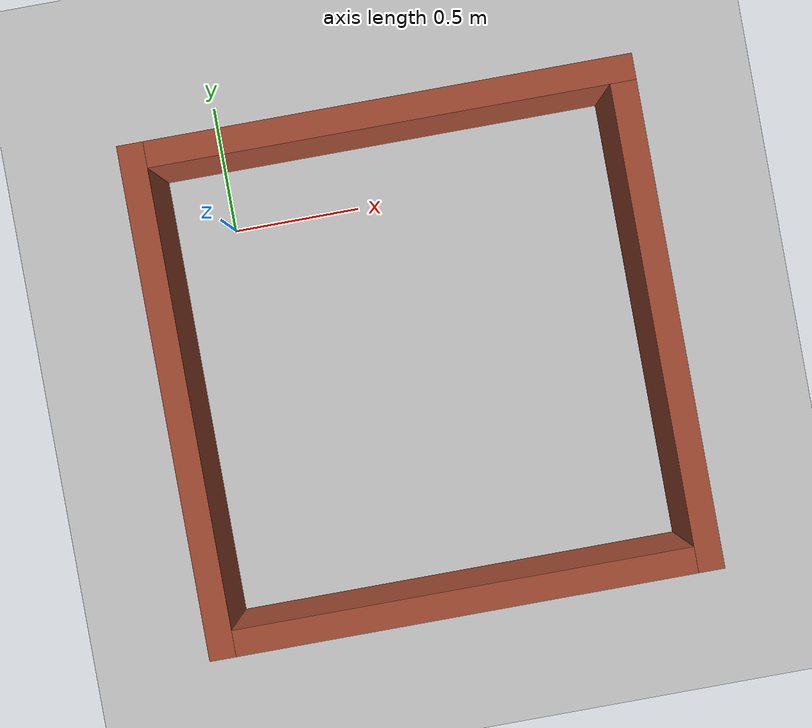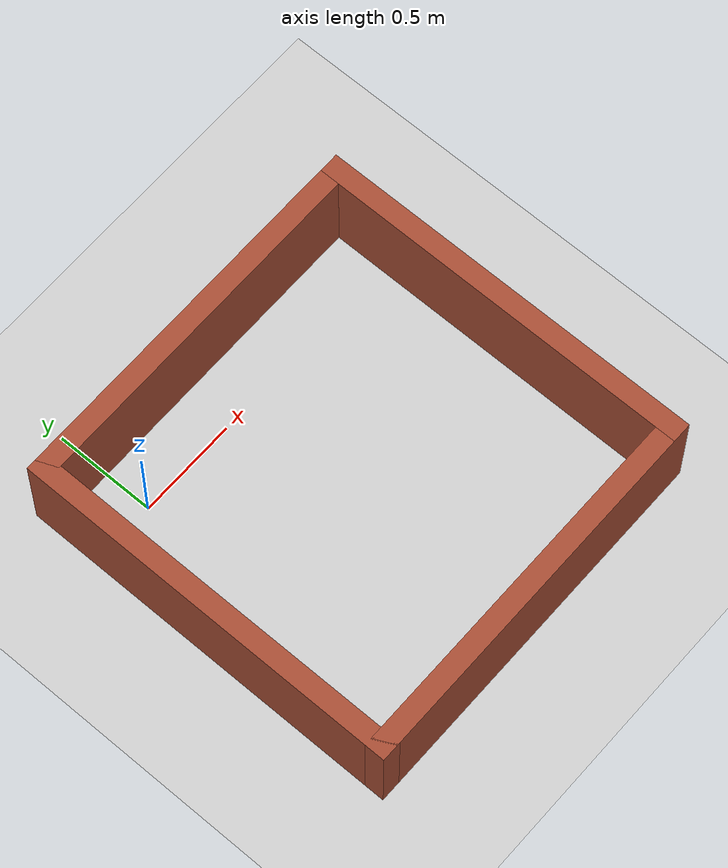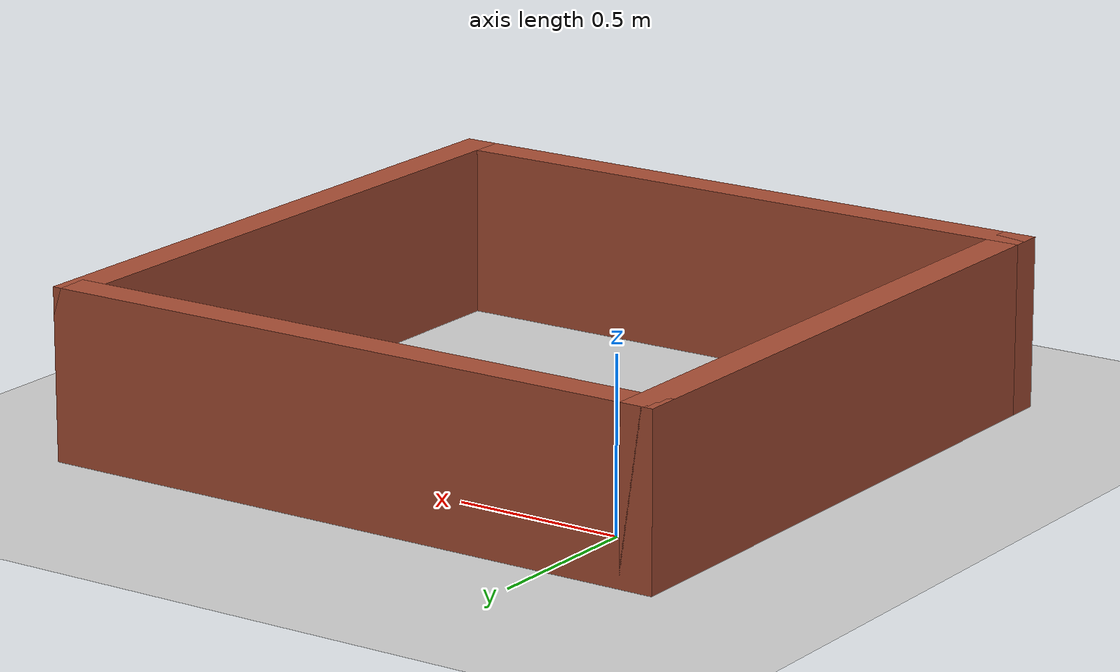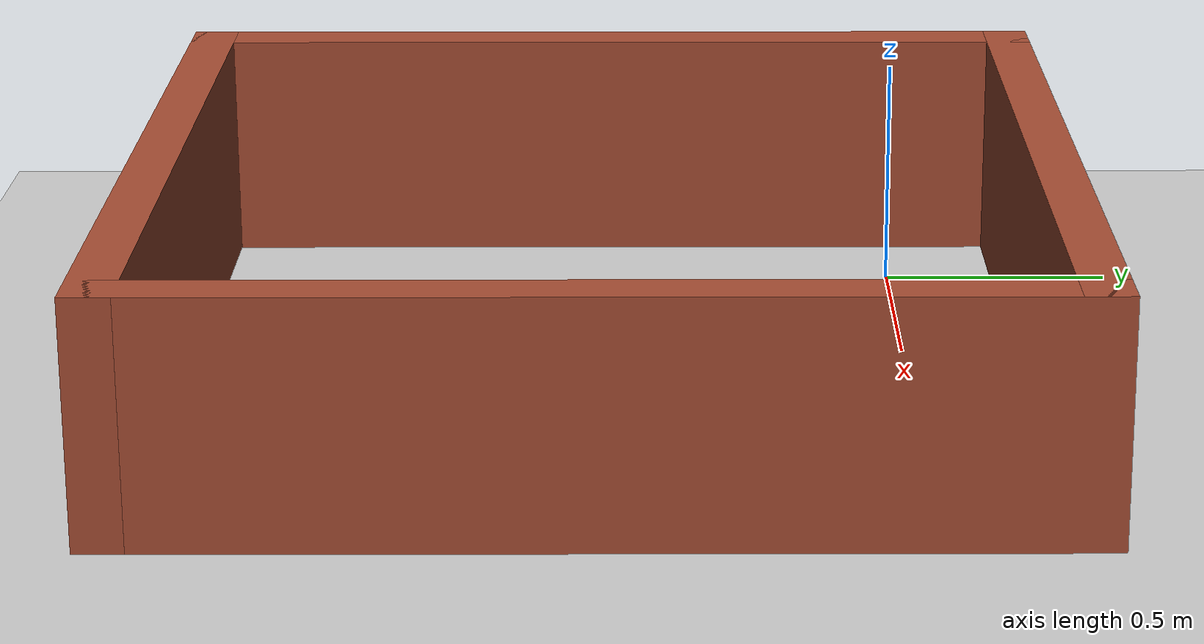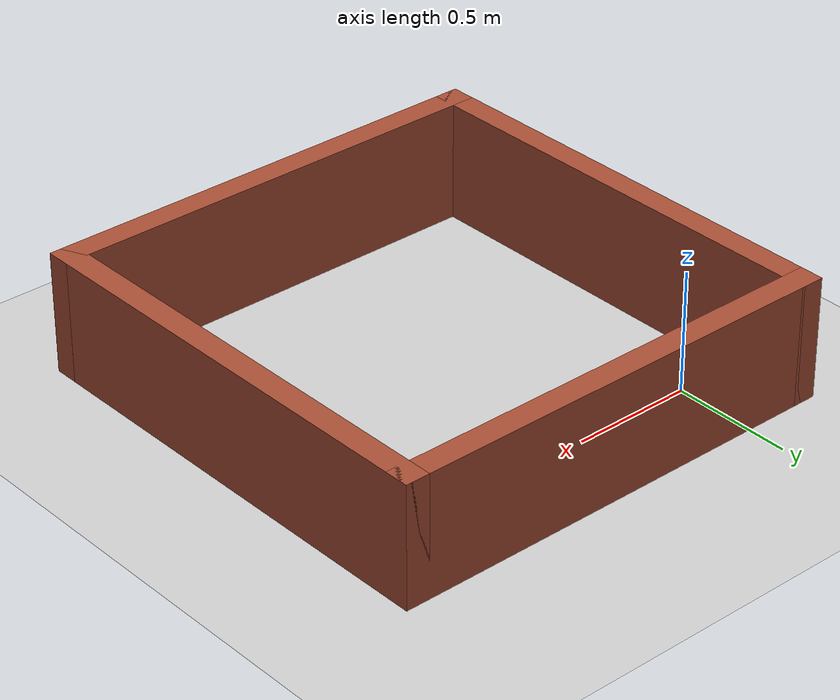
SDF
<sdf version="1.7">
 <world name="default">
  <model name="ground_plane">
   <static>1</static>
   <link name="link">
    <collision name="collision">
     <geometry><plane><normal>0 0 1</normal><size>100 100</size></plane></geometry>
     <surface><friction><ode><mu>100</mu><mu2>50</mu2></ode></friction></surface>
    </collision>
    <visual name="visual">
     <cast_shadows>0</cast_shadows>
     <geometry><plane><normal>0 0 1</normal><size>100 100</size></plane></geometry>
     <material>
      <script><uri>file://media/materials/scripts/gazebo.material</uri><name>Gazebo/Grey</name></script>
     </material>
    </visual>
   </link>
  </model>
  <light name="sun" type="directional">
   <pose>0 0 10 0 -0 0</pose>
   <diffuse>0.8 0.8 0.8 1</diffuse>
   <specular>0.2 0.2 0.2 1</specular>
   <attenuation>
    <range>1000</range>
    <constant>0.9</constant>
    <linear>0.01</linear>
    <quadratic>0.001</quadratic>
   </attenuation>
   <direction>-0.5 0.1 -0.9</direction>
   <spot><inner_angle>0</inner_angle><outer_angle>0</outer_angle><falloff>0</falloff></spot>
  </light>
  <scene><shadows>0</shadows><ambient>0.4 0.4 0.4 1</ambient><background>0.7 0.7 0.7 1</background></scene>
  <physics type="ode">
   <real_time_update_rate>1000</real_time_update_rate>
   <max_step_size>0.001</max_step_size>
   <real_time_factor>1</real_time_factor>
   <ode>
    <solver>
     <type>quick</type>
     <iters>150</iters>
     <precon_iters>0</precon_iters>
     <sor>1.4</sor>
     <use_dynamic_moi_rescaling>1</use_dynamic_moi_rescaling>
    </solver>
    <constraints>
     <cfm>1e-05</cfm>
     <erp>0.2</erp>
     <contact_max_correcting_vel>2000</contact_max_correcting_vel>
     <contact_surface_layer>0.01</contact_surface_layer>
    </constraints>
   </ode>
  </physics>
  <gravity>0 0 -9.8</gravity>
  <magnetic_field>6e-06 2.3e-05 -4.2e-05</magnetic_field>
  <atmosphere type="adiabatic"/>
  <audio><device>default</device></audio>
  <spherical_coordinates>
   <surface_model>EARTH_WGS84</surface_model>
   <latitude_deg>0</latitude_deg>
   <longitude_deg>0</longitude_deg>
   <elevation>0</elevation>
   <heading_deg>0</heading_deg>
  </spherical_coordinates>
  <model name="world_1">
   <pose>0.640821 -0.099987 0 0 -0 0</pose>
   <link name="Wall_5">
    <collision name="Wall_5_Collision">
     <geometry><box><size>1.95 0.1 0.5</size></box></geometry>
     <pose>0 0 0.25 0 -0 0</pose>
    </collision>
    <visual name="Wall_5_Visual">
     <pose>0 0 0.25 0 -0 0</pose>
     <geometry><box><size>1.95 0.1 0.5</size></box></geometry>
     <material>
      <script><uri>file://media/materials/scripts/gazebo.material</uri><name>Gazebo/Bricks</name></script>
      <ambient>1 1 1 1</ambient>
     </material>
     <meta><layer>0</layer></meta>
    </visual>
    <pose>-0.925 -0.535 0 0 -0 1.5708</pose>
   </link>
   <link name="Wall_6">
    <collision name="Wall_6_Collision">
     <geometry><box><size>1.95 0.1 0.5</size></box></geometry>
     <pose>0 0 0.25 0 -0 0</pose>
    </collision>
    <visual name="Wall_6_Visual">
     <pose>0 0 0.25 0 -0 0</pose>
     <geometry><box><size>1.95 0.1 0.5</size></box></geometry>
     <material>
      <script><uri>file://media/materials/scripts/gazebo.material</uri><name>Gazebo/Bricks</name></script>
      <ambient>1 1 1 1</ambient>
     </material>
     <meta><layer>0</layer></meta>
    </visual>
    <pose>-0 0.39 0 0 -0 0</pose>
   </link>
   <link name="Wall_7">
    <collision name="Wall_7_Collision">
     <geometry><box><size>1.95 0.1 0.5</size></box></geometry>
     <pose>0 0 0.25 0 -0 0</pose>
    </collision>
    <visual name="Wall_7_Visual">
     <pose>0 0 0.25 0 -0 0</pose>
     <geometry><box><size>1.95 0.1 0.5</size></box></geometry>
     <material>
      <script><uri>file://media/materials/scripts/gazebo.material</uri><name>Gazebo/Bricks</name></script>
      <ambient>1 1 1 1</ambient>
     </material>
     <meta><layer>0</layer></meta>
    </visual>
    <pose>0.925 -0.535 0 0 -0 -1.5708</pose>
   </link>
   <link name="Wall_8">
    <collision name="Wall_8_Collision">
     <geometry><box><size>1.95 0.1 0.5</size></box></geometry>
     <pose>0 0 0.25 0 -0 0</pose>
    </collision>
    <visual name="Wall_8_Visual">
     <pose>0 0 0.25 0 -0 0</pose>
     <geometry><box><size>1.95 0.1 0.5</size></box></geometry>
     <material>
      <script><uri>file://media/materials/scripts/gazebo.material</uri><name>Gazebo/Bricks</name></script>
      <ambient>1 1 1 1</ambient>
     </material>
     <meta><layer>0</layer></meta>
    </visual>
    <pose>-0 -1.46 0 0 -0 3.14159</pose>
   </link>
   <static>1</static>
  </model>
 </world>
</sdf>
